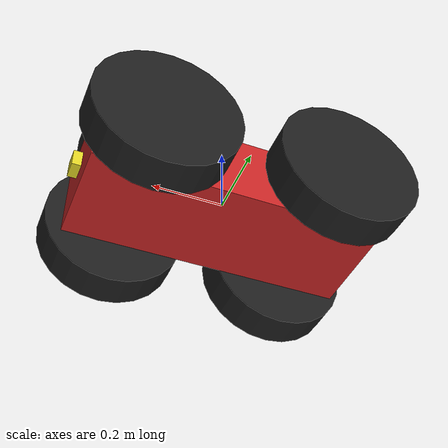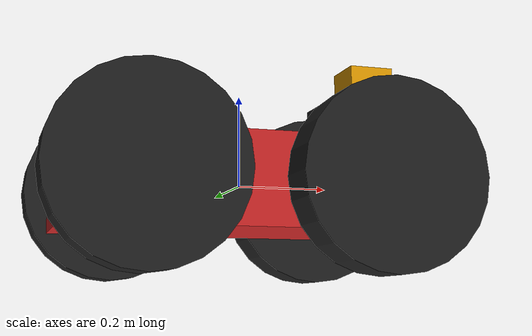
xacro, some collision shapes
<?xml version='1.0'?>

<robot name="my_robot" xmlns:xacro="http://www.ros.org/wiki/xacro">
  <xacro:include filename="$(find my_robot)/urdf/my_robot.gazebo" />
  <xacro:property name="body_mass" value="10"/>
  <xacro:property name="body_length" value="0.8"/>
  <xacro:property name="body_width" value="0.3"/>
  <xacro:property name="body_height" value="0.2"/>
  <xacro:property name="wheel_mass" value="5"/>
  <xacro:property name="wheel_radius" value="0.2"/>
  <xacro:property name="wheel_length" value="0.1"/>

  <link name="robot_footprint"></link>

  <joint name="robot_footprint_joint" type="fixed">
    <origin xyz="0 0 0" rpy="0 0 0" />
    <parent link="robot_footprint"/>
    <child link="chassis" />
  </joint>

  <link name='chassis'>
    <pose>0 0 0.2 0 0 0</pose>

    <inertial>
      <mass value="${body_mass}"/>
      <origin xyz="0.0 0 0" rpy=" 0 0 0"/>
      <inertia
          ixx="${body_mass*(body_length*body_length + body_height*body_height)/12}" ixy="0" ixz="0"
          iyy="${body_mass*(body_width*body_width + body_height*body_height)/12}" iyz="0"
          izz="${body_mass*(body_length*body_length + body_width*body_width)/12}"
      />
    </inertial>

    <collision name='collision'>
      <origin xyz="0 0 0" rpy=" 0 0 0"/>
      <geometry>
        <box size="${body_length} ${body_width} ${body_height}"/>
      </geometry>
    </collision>

    <visual name='chassis_visual'>
      <origin xyz="0 0 0" rpy=" 0 0 0"/>
      <geometry>
        <box size="${body_length} ${body_width} ${body_height}"/>
      </geometry>
    </visual>
  </link>

  <link name='front_left_wheel'>
    <collision name='front_left_wheel_collision'>
      <origin xyz="0 0 0" rpy="0 1.5707 1.5707"/>
      <geometry>
        <cylinder radius="${wheel_radius}" length="${wheel_length}"/>
      </geometry>
    </collision>
    <visual name='front_left_wheel_visual'>
      <origin xyz="0 0 0" rpy="0 1.5707 1.5707"/>
      <geometry>
        <cylinder radius="${wheel_radius}" length="${wheel_length}"/>
      </geometry>
    </visual>
    <inertial>
      <mass value="${wheel_mass}"/>
      <origin xyz="0.0 0 0" rpy=" 0 0 0"/>
      <inertia
          ixx="${wheel_mass*(3*wheel_radius*wheel_radius + wheel_length*wheel_length)/12}" ixy="0" ixz="0"
          iyy="${wheel_mass*(3*wheel_radius*wheel_radius + wheel_length*wheel_length)/12}" iyz="0"
          izz="${wheel_mass*wheel_radius*wheel_radius/2}"
      />
    </inertial>
  </link>

  <link name='front_right_wheel'>
    <collision name='front_right_wheel_collision'>
      <origin xyz="0 0 0" rpy="0 1.5707 1.5707"/>
      <geometry>
        <cylinder radius="${wheel_radius}" length="${wheel_length}"/>
      </geometry>
    </collision>
    <visual name='front_right_wheel_visual'>
      <origin xyz="0 0 0" rpy="0 1.5707 1.5707"/>
      <geometry>
        <cylinder radius="${wheel_radius}" length="${wheel_length}"/>
      </geometry>
    </visual>
    <inertial>
      <mass value="${wheel_mass}"/>
      <origin xyz="0.0 0 0" rpy=" 0 0 0"/>
      <inertia
          ixx="${wheel_mass*(3*wheel_radius*wheel_radius + wheel_length*wheel_length)/12}" ixy="0" ixz="0"
          iyy="${wheel_mass*(3*wheel_radius*wheel_radius + wheel_length*wheel_length)/12}" iyz="0"
          izz="${wheel_mass*wheel_radius*wheel_radius/2}"
      />
    </inertial>
  </link>

  <link name='back_left_wheel'>
    <collision name='back_left_wheel_collision'>
      <origin xyz="0 0 0" rpy="0 1.5707 1.5707"/>
      <geometry>
        <cylinder radius="${wheel_radius}" length="${wheel_length}"/>
      </geometry>
    </collision>
    <visual name='back_left_wheel_visual'>
      <origin xyz="0 0 0" rpy="0 1.5707 1.5707"/>
      <geometry>
        <cylinder radius="${wheel_radius}" length="${wheel_length}"/>
      </geometry>
    </visual>
    <inertial>
      <mass value="${wheel_mass}"/>
      <origin xyz="0.0 0 0" rpy=" 0 0 0"/>
      <inertia
          ixx="${wheel_mass*(3*wheel_radius*wheel_radius + wheel_length*wheel_length)/12}" ixy="0" ixz="0"
          iyy="${wheel_mass*(3*wheel_radius*wheel_radius + wheel_length*wheel_length)/12}" iyz="0"
          izz="${wheel_mass*wheel_radius*wheel_radius/2}"
      />
    </inertial>
  </link>

  <link name='back_right_wheel'>
    <collision name='back_right_wheel_collision'>
      <origin xyz="0 0 0" rpy="0 1.5707 1.5707"/>
      <geometry>
        <cylinder radius="${wheel_radius}" length="${wheel_length}"/>
      </geometry>
    </collision>
    <visual name='back_right_wheel_visual'>
      <origin xyz="0 0 0" rpy="0 1.5707 1.5707"/>
      <geometry>
        <cylinder radius="${wheel_radius}" length="${wheel_length}"/>
      </geometry>
    </visual>
    <inertial>
      <mass value="${wheel_mass}"/>
      <origin xyz="0.0 0 0" rpy=" 0 0 0"/>
      <inertia
          ixx="${wheel_mass*(3*wheel_radius*wheel_radius + wheel_length*wheel_length)/12}" ixy="0" ixz="0"
          iyy="${wheel_mass*(3*wheel_radius*wheel_radius + wheel_length*wheel_length)/12}" iyz="0"
          izz="${wheel_mass*wheel_radius*wheel_radius/2}"
      />
    </inertial>
  </link>

  <joint type="continuous" name="front_left_wheel_hinge">
    <origin xyz="0.25 0.23 0" rpy="0 0 0"/>
    <child link="front_left_wheel"/>
    <parent link="chassis"/>
    <axis xyz="0 1 0" rpy="0 0 0"/>
    <limit effort="10000" velocity="1000"/>
    <dynamics damping="1.0" friction="1.0"/>
  </joint>

  <joint type="continuous" name="front_right_wheel_hinge">
    <origin xyz="0.25 -0.23 0" rpy="0 0 0"/>
    <child link="front_right_wheel"/>
    <parent link="chassis"/>
    <axis xyz="0 1 0" rpy="0 0 0"/>
    <limit effort="10000" velocity="1000"/>
    <dynamics damping="1.0" friction="1.0"/>
  </joint>

  <joint type="continuous" name="back_left_wheel_hinge">
    <origin xyz="-0.25 0.23 0" rpy="0 0 0"/>
    <child link="back_left_wheel"/>
    <parent link="chassis"/>
    <axis xyz="0 1 0" rpy="0 0 0"/>
    <limit effort="10000" velocity="1000"/>
    <dynamics damping="1.0" friction="1.0"/>
  </joint>

  <joint type="continuous" name="back_right_wheel_hinge">
    <origin xyz="-0.25 -0.23 0" rpy="0 0 0"/>
    <child link="back_right_wheel"/>
    <parent link="chassis"/>
    <axis xyz="0 1 0" rpy="0 0 0"/>
    <limit effort="10000" velocity="1000"/>
    <dynamics damping="1.0" friction="1.0"/>
  </joint>

  <link name='camera'>
    <collision name='camera_collision'>
      <origin xyz="0 0 0" rpy="0 0 0"/>
      <geometry>
        <box size = "0.05 0.05 0.05"/>
      </geometry>
    </collision>
    <visual name='camera_visual'>
      <origin xyz="0 0 0" rpy="0 0 0"/>
      <geometry>
        <box size="0.05 0.05 0.05"/>
      </geometry>
    </visual>
    <inertial>
      <mass value="0.1"/>
      <origin xyz="0.05 0.05 0.05" rpy=" 0 0 0"/>
      <inertia
          ixx="1e-6" ixy="0" ixz="0"
          iyy="1e-6" iyz="0"
          izz="1e-6"
      />
    </inertial>
  </link>

  <link name="camera_link_optical">
  </link>

  <joint type="fixed" name="camera_optical_joint">
    <origin xyz="0 0 0" rpy="-1.5707 0 -1.5707"/>
    <child link="camera_link_optical"/>
    <parent link="camera"/>
  </joint>

  <joint type="fixed" name="camera_joint">
    <origin xyz="0.4 0 0" rpy="0 0 0"/>
    <child link="camera"/>
    <parent link="chassis"/>
    <axis xyz="0 1 0" rpy="0 0 0"/>
  </joint>

  <link name='hokuyo'>
    <collision name='hokuyo_collision'>
      <origin xyz="0 0 0" rpy="0 0 0"/>
      <geometry>
        <box size = "0.1 0.1 0.1"/>
      </geometry>
    </collision>
    <visual name='hokuyo_visual'>
      <origin xyz="0 0 0" rpy="0 0 0"/>
      <geometry>
        <mesh  filename ="package://my_robot/meshes/hokuyo.dae"/>
      </geometry>
    </visual>
    <inertial>
      <mass value="1e-5"/>
      <origin xyz="0 0 0" rpy=" 0 0 0"/>
      <inertia
          ixx="1e-6" ixy="0" ixz="0"
          iyy="1e-6" iyz="0"
          izz="1e-6"
      />
    </inertial>
  </link>

  <link name='hokuyo_holder'>
    <collision name='holder_collision'>
      <origin xyz="0 0 0" rpy="0 0 0"/>
      <geometry>
        <box size = "0.2 0.2 0.1"/>
      </geometry>
    </collision>
    <visual name='holder_visual'>
      <origin xyz="0 0 0" rpy="0 0 0"/>
      <geometry>
        <box size = "0.2 0.2 0.1"/>
      </geometry>
    </visual>
    <inertial>
      <mass value="1e-5"/>
      <origin xyz="0 0 0" rpy=" 0 0 0"/>
      <inertia
          ixx="1e-6" ixy="0" ixz="0"
          iyy="1e-6" iyz="0"
          izz="1e-6"
      />
    </inertial>
  </link>

  <joint type="fixed" name="hokuyo_holder_joint">
    <origin xyz="0.3 0 0.15" rpy="0 0 0"/>
    <child link="hokuyo_holder"/>
    <parent link="chassis"/>
    <axis xyz="0 1 0" rpy="0 0 0"/>
  </joint>

  <joint type="fixed" name="hokuyo_joint">
    <origin xyz="0.0 0 0.08" rpy="0 0 0"/>
    <child link="hokuyo"/>
    <parent link="hokuyo_holder"/>
    <axis xyz="0 1 0" rpy="0 0 0"/>
  </joint>

</robot>
